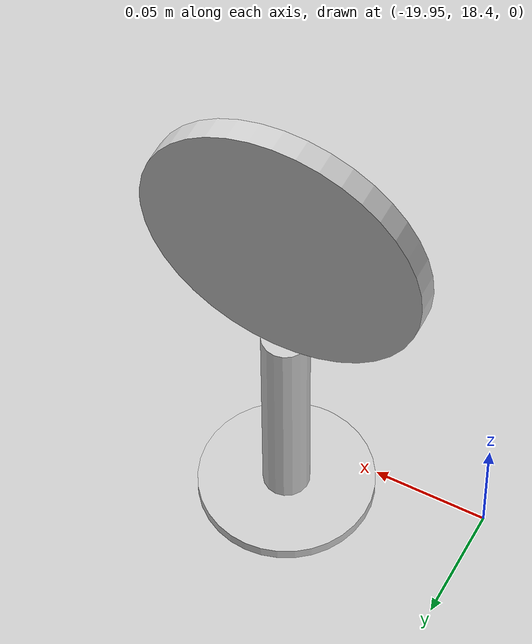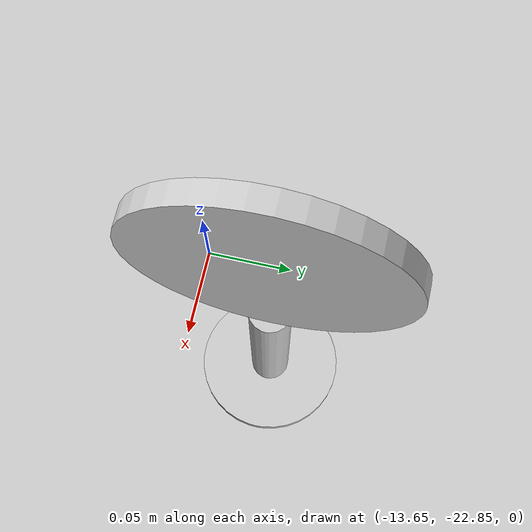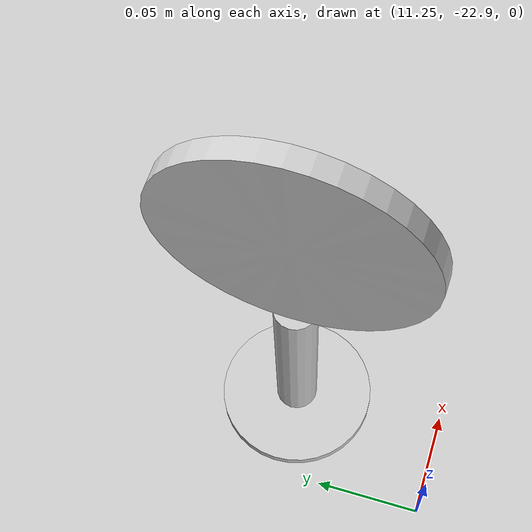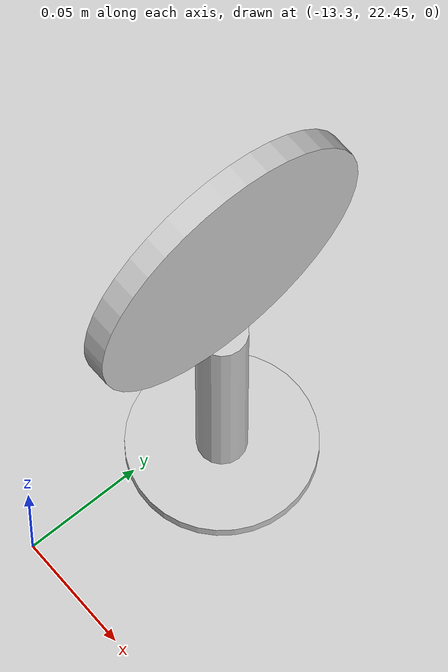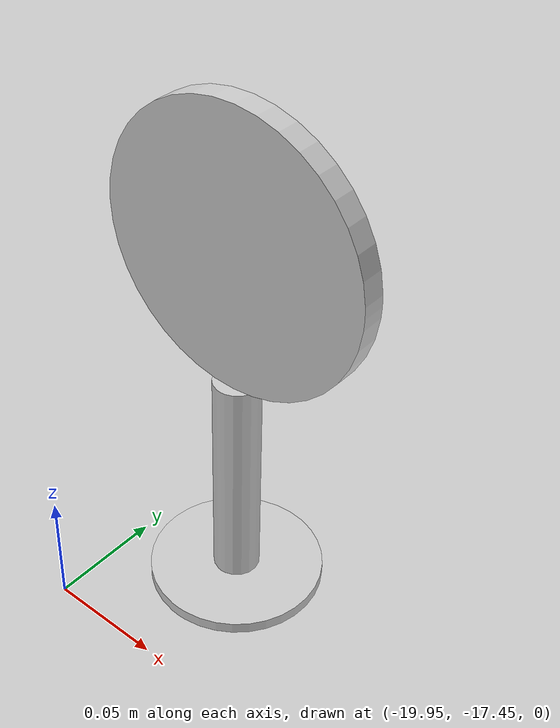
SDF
<sdf version="1.6">
 <world name="default">
  <light name="sun" type="directional">
   <pose>0 0 10 0 -0 0</pose>
   <diffuse>0.8 0.8 0.8 1</diffuse>
   <specular>0.2 0.2 0.2 1</specular>
   <attenuation>
    <range>1000</range>
    <constant>0.9</constant>
    <linear>0.01</linear>
    <quadratic>0.001</quadratic>
   </attenuation>
   <direction>-0.5 0.1 -0.9</direction>
  </light>
  <gravity>0 0 -9.8</gravity>
  <magnetic_field>6e-06 2.3e-05 -4.2e-05</magnetic_field>
  <atmosphere type="adiabatic"/>
  <physics name="default_physics" default="0" type="ode">
   <max_step_size>0.001</max_step_size>
   <real_time_factor>1</real_time_factor>
   <real_time_update_rate>1000</real_time_update_rate>
  </physics>
  <scene><ambient>0.4 0.4 0.4 1</ambient><background>0.7 0.7 0.7 1</background><shadows>1</shadows></scene>
  <audio><device>default</device></audio>
  <spherical_coordinates>
   <surface_model>EARTH_WGS84</surface_model>
   <latitude_deg>0</latitude_deg>
   <longitude_deg>0</longitude_deg>
   <elevation>0</elevation>
   <heading_deg>0</heading_deg>
  </spherical_coordinates>
  <model name="roscar_pista_01">
   <static>1</static>
   <link name="link">
    <collision name="collision">
     <geometry><plane><normal>0 0 1</normal><size>20 20</size></plane></geometry>
     <surface><friction><ode><mu>100</mu><mu2>50</mu2></ode></friction></surface>
    </collision>
    <visual name="visual">
     <cast_shadows>0</cast_shadows>
     <geometry><plane><normal>0 0 1</normal><size>50 50</size></plane></geometry>
     <material>
      <script>
       <uri>model://roscar_pista_01/materials/scripts</uri>
       <uri>model://roscar_pista_01/materials/textures/</uri>
       <name>pista_01</name>
      </script>
     </material>
    </visual>
   </link>
   <pose>0.0544 0.0405 0 0 -0 0</pose>
  </model>
  <model name="roscar_100.SLDPRT">
   <link name="roscar_100">
    <inertial>
     <pose>0 0 0.12271 0 -0 0</pose>
     <mass>0.1666</mass>
     <inertia>
      <ixx>0.00080301</ixx>
      <ixy>1.71066e-36</ixy>
      <ixz>-1.796e-20</ixz>
      <iyy>0.00090385</iyy>
      <iyz>-4.82143e-20</iyz>
      <izz>0.00011983</izz>
     </inertia>
    </inertial>
    <collision name="roscar_100_collision">
     <pose>0 0 0 1.5708 -0 0</pose>
     <geometry><mesh><scale>1 1 1</scale><uri>model://roscar_100/meshes/roscar_100.dae</uri></mesh></geometry>
    </collision>
    <visual name="roscar_100_visual">
     <pose>0 0 0 1.5708 -0 0</pose>
     <geometry><mesh><scale>1 1 1</scale><uri>model://roscar_100/meshes/roscar_100.dae</uri></mesh></geometry>
     <material>
      <script>
       <uri>model://roscar_100/materials/scripts</uri>
       <uri>model://roscar_100/materials/textures</uri>
       <name>100/Texture</name>
      </script>
     </material>
    </visual>
   </link>
   <pose>11.2929 -22.8261 -0 -4e-06 1e-06 1.554</pose>
  </model>
  <model name="roscar_50.SLDPRT">
   <link name="roscar_50">
    <inertial>
     <pose>0 0 0.12271 0 -0 0</pose>
     <mass>0.1666</mass>
     <inertia>
      <ixx>0.00080301</ixx>
      <ixy>1.71066e-36</ixy>
      <ixz>-1.796e-20</ixz>
      <iyy>0.00090385</iyy>
      <iyz>-4.82143e-20</iyz>
      <izz>0.00011983</izz>
     </inertia>
    </inertial>
    <collision name="roscar_50_collision">
     <pose>0 0 0 1.5708 -0 0</pose>
     <geometry><mesh><scale>1 1 1</scale><uri>model://roscar_50/meshes/roscar_50.dae</uri></mesh></geometry>
    </collision>
    <visual name="roscar_50_visual">
     <pose>0 0 0 1.5708 -0 0</pose>
     <geometry><mesh><scale>1 1 1</scale><uri>model://roscar_50/meshes/roscar_50.dae</uri></mesh></geometry>
     <material>
      <script>
       <uri>model://roscar_50/materials/scripts</uri>
       <uri>model://roscar_50/materials/textures</uri>
       <name>50/Texture</name>
      </script>
     </material>
    </visual>
   </link>
   <pose>-13.5926 -22.7999 0 -6e-06 -1e-06 1.56561</pose>
  </model>
  <model name="roscar_100.SLDPRT_0">
   <link name="roscar_100">
    <inertial>
     <pose>0 0 0.12271 0 -0 0</pose>
     <mass>0.1666</mass>
     <inertia>
      <ixx>0.00080301</ixx>
      <ixy>1.71066e-36</ixy>
      <ixz>-1.796e-20</ixz>
      <iyy>0.00090385</iyy>
      <iyz>-4.82143e-20</iyz>
      <izz>0.00011983</izz>
     </inertia>
    </inertial>
    <collision name="roscar_100_collision">
     <pose>0 0 0 1.5708 -0 0</pose>
     <geometry><mesh><scale>1 1 1</scale><uri>model://roscar_100/meshes/roscar_100.dae</uri></mesh></geometry>
    </collision>
    <visual name="roscar_100_visual">
     <pose>0 0 0 1.5708 -0 0</pose>
     <geometry><mesh><scale>1 1 1</scale><uri>model://roscar_100/meshes/roscar_100.dae</uri></mesh></geometry>
     <material>
      <script>
       <uri>model://roscar_100/materials/scripts</uri>
       <uri>model://roscar_100/materials/textures</uri>
       <name>100/Texture</name>
      </script>
     </material>
    </visual>
   </link>
   <pose>-19.9034 -17.3906 2e-06 -4.2e-05 -4.4e-05 0.009407</pose>
  </model>
  <model name="roscar_50.SLDPRT_0">
   <link name="roscar_50">
    <inertial>
     <pose>0 0 0.12271 0 -0 0</pose>
     <mass>0.1666</mass>
     <inertia>
      <ixx>0.00080301</ixx>
      <ixy>1.71066e-36</ixy>
      <ixz>-1.796e-20</ixz>
      <iyy>0.00090385</iyy>
      <iyz>-4.82143e-20</iyz>
      <izz>0.00011983</izz>
     </inertia>
    </inertial>
    <collision name="roscar_50_collision">
     <pose>0 0 0 1.5708 -0 0</pose>
     <geometry><mesh><scale>1 1 1</scale><uri>model://roscar_50/meshes/roscar_50.dae</uri></mesh></geometry>
    </collision>
    <visual name="roscar_50_visual">
     <pose>0 0 0 1.5708 -0 0</pose>
     <geometry><mesh><scale>1 1 1</scale><uri>model://roscar_50/meshes/roscar_50.dae</uri></mesh></geometry>
     <material>
      <script>
       <uri>model://roscar_50/materials/scripts</uri>
       <uri>model://roscar_50/materials/textures</uri>
       <name>50/Texture</name>
      </script>
     </material>
    </visual>
   </link>
   <pose>-19.8684 18.422 -0 -6e-06 -1e-06 0.005191</pose>
  </model>
  <model name="roscar_100.SLDPRT_1">
   <link name="roscar_100">
    <inertial>
     <pose>0 0 0.12271 0 -0 0</pose>
     <mass>0.1666</mass>
     <inertia>
      <ixx>0.00080301</ixx>
      <ixy>1.71066e-36</ixy>
      <ixz>-1.796e-20</ixz>
      <iyy>0.00090385</iyy>
      <iyz>-4.82143e-20</iyz>
      <izz>0.00011983</izz>
     </inertia>
    </inertial>
    <collision name="roscar_100_collision">
     <pose>0 0 0 1.5708 -0 0</pose>
     <geometry><mesh><scale>1 1 1</scale><uri>model://roscar_100/meshes/roscar_100.dae</uri></mesh></geometry>
    </collision>
    <visual name="roscar_100_visual">
     <pose>0 0 0 1.5708 -0 0</pose>
     <geometry><mesh><scale>1 1 1</scale><uri>model://roscar_100/meshes/roscar_100.dae</uri></mesh></geometry>
     <material>
      <script>
       <uri>model://roscar_100/materials/scripts</uri>
       <uri>model://roscar_100/materials/textures</uri>
       <name>100/Texture</name>
      </script>
     </material>
    </visual>
   </link>
   <pose>-13.2865 22.5324 2e-06 -1.2e-05 4e-05 -1.55484</pose>
  </model>
  <model name="roscar_50.SLDPRT_1">
   <link name="roscar_50">
    <inertial>
     <pose>0 0 0.12271 0 -0 0</pose>
     <mass>0.1666</mass>
     <inertia>
      <ixx>0.00080301</ixx>
      <ixy>1.71066e-36</ixy>
      <ixz>-1.796e-20</ixz>
      <iyy>0.00090385</iyy>
      <iyz>-4.82143e-20</iyz>
      <izz>0.00011983</izz>
     </inertia>
    </inertial>
    <collision name="roscar_50_collision">
     <pose>0 0 0 1.5708 -0 0</pose>
     <geometry><mesh><scale>1 1 1</scale><uri>model://roscar_50/meshes/roscar_50.dae</uri></mesh></geometry>
    </collision>
    <visual name="roscar_50_visual">
     <pose>0 0 0 1.5708 -0 0</pose>
     <geometry><mesh><scale>1 1 1</scale><uri>model://roscar_50/meshes/roscar_50.dae</uri></mesh></geometry>
     <material>
      <script>
       <uri>model://roscar_50/materials/scripts</uri>
       <uri>model://roscar_50/materials/textures</uri>
       <name>50/Texture</name>
      </script>
     </material>
    </visual>
   </link>
   <pose>14.6535 22.5454 -1e-06 8e-06 -3e-05 -1.57708</pose>
  </model>
  <model name="roscar_100.SLDPRT_2">
   <link name="roscar_100">
    <inertial>
     <pose>0 0 0.12271 0 -0 0</pose>
     <mass>0.1666</mass>
     <inertia>
      <ixx>0.00080301</ixx>
      <ixy>1.71066e-36</ixy>
      <ixz>-1.796e-20</ixz>
      <iyy>0.00090385</iyy>
      <iyz>-4.82143e-20</iyz>
      <izz>0.00011983</izz>
     </inertia>
    </inertial>
    <collision name="roscar_100_collision">
     <pose>0 0 0 1.5708 -0 0</pose>
     <geometry><mesh><scale>1 1 1</scale><uri>model://roscar_100/meshes/roscar_100.dae</uri></mesh></geometry>
    </collision>
    <visual name="roscar_100_visual">
     <pose>0 0 0 1.5708 -0 0</pose>
     <geometry><mesh><scale>1 1 1</scale><uri>model://roscar_100/meshes/roscar_100.dae</uri></mesh></geometry>
     <material>
      <script>
       <uri>model://roscar_100/materials/scripts</uri>
       <uri>model://roscar_100/materials/textures</uri>
       <name>100/Texture</name>
      </script>
     </material>
    </visual>
   </link>
   <pose>13.5085 13.8535 -1e-06 3e-06 2.1e-05 1.50895</pose>
  </model>
 </world>
</sdf>
